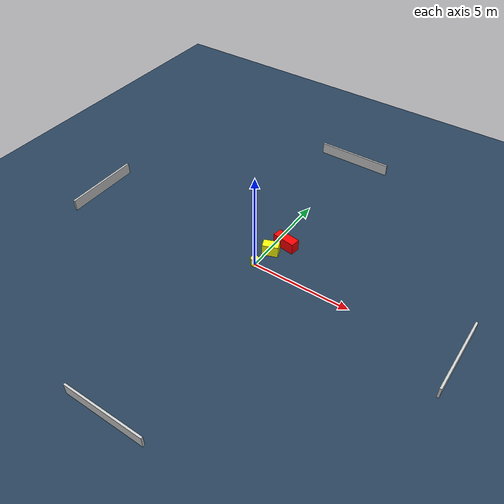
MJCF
<?xml version="1.0" ?>
<mujoco model="generated_environment">
  <option timestep="0.01" integrator="RK4" cone="elliptic"/>
  <default>
    <geom density="1"/>
  </default>
  <asset>
    <texture builtin="gradient" height="3072" name="skybox" rgb1="0.3 0.5 0.7" rgb2="0 0 0" type="skybox" width="512"/>
    <texture builtin="checker" height="300" name="groundplane" rgb1="0.2 0.3 0.4" rgb2="0.1 0.2 0.3" type="2d" width="300"/>
    <material name="groundplane" reflectance="0.2" texrepeat="5 5" texture="groundplane"/>
  </asset>
  <worldbody>
    <light dir="0 0 -1" directional="true" pos="0 0 1.5"/>
    <geom condim="3" friction="0.5 0.005 0.001" material="groundplane" name="floor" pos="0 0 0" size="0 0 0.05" type="plane"/>
    <body name="walls">
      <geom name="wall_1" condim="4" pos="-10.0 0.0 0.3" rgba="0.800000011920929 0.800000011920929 0.800000011920929 1.0" size="0.05 2.0 0.3" type="box"/>
      <geom name="wall_2" condim="4" pos="10.0 0.0 0.3" rgba="0.800000011920929 0.800000011920929 0.800000011920929 1.0" size="0.05 2.0 0.3" type="box"/>
      <geom name="wall_3" condim="4" pos="0.0 -10.0 0.3" rgba="0.800000011920929 0.800000011920929 0.800000011920929 1.0" size="2.0 0.05 0.3" type="box"/>
      <geom name="wall_4" condim="4" pos="0.0 10.0 0.3" rgba="0.800000011920929 0.800000011920929 0.800000011920929 1.0" size="2.0 0.05 0.3" type="box"/>
    </body>
    <body name="robot">
      <joint name="joint_x" type="slide" pos="0 0 0" axis="1 0 0"/>
      <joint name="joint_y" type="slide" pos="0 0 0" axis="0 1 0"/>
      <geom name="robot" type="cylinder" pos="0.0 0.0 0.2" size="0.2 0.2 0.0" mass="5.0" friction="1.0 0.005 0.0001" condim="4" rgba="1.0 1.0 0.0 1.0"/>
    </body>
    <body name="obstacle_1_movable">
      <geom name="obstacle_1_movable" condim="4" pos="0.19388432396797478 1.078436296522169 0.3" euler="0 0 200.57906097658372" friction="0.0 0.005 0.001" rgba="1.0 1.0 0.0 1.0" size="0.396564389170098 0.2320544969204712 0.3" type="box" mass="0.1"/>
      <joint type="free"/>
    </body>
    <body name="obstacle_2_static">
      <geom name="obstacle_2_static" condim="4" pos="0.5430140585400928 1.8811121429866788 0.3" euler="0 0 262.022769649811" friction="0.0 0.005 0.001" rgba="1.0 0.0 0.0 1.0" size="0.24137326514076635 0.5857485529268749 0.3" type="box"/>
    </body>
  </worldbody>
  <actuator>
    <motor name="actuator_x" joint="joint_x" gear="1" ctrlrange="-1 1"/>
    <motor name="actuator_y" joint="joint_y" gear="1" ctrlrange="-1 1"/>
  </actuator>
</mujoco>
